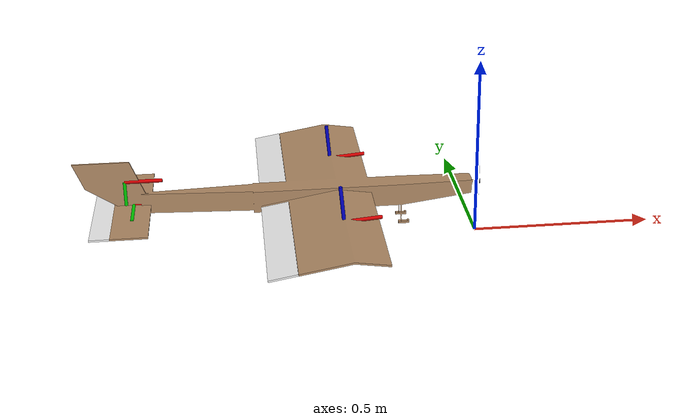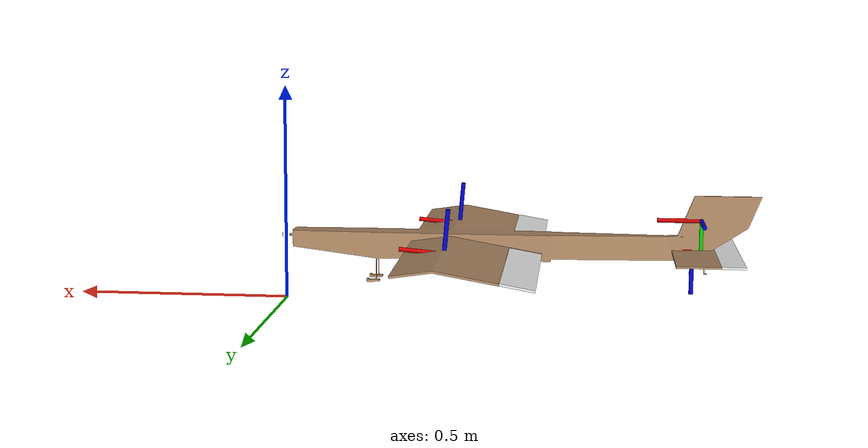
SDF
<?xml version='1.0'?>
<sdf version='1.6'>
  <model name="mini_fixedwing_09">
    <pose>0 0 0.15 0 0 0</pose>
    <link name='fuselage'>
      <inertial>
        <pose>-0.35 0 -0.013 0 0 0</pose>
        <mass>0.225</mass>
        <inertia>
          <ixx>4.3e-3</ixx>
          <iyy>1.51e-2</iyy>
          <izz>1.92e-2</izz>
        </inertia>
      </inertial>
      <collision name='collision'>
        <geometry>
          <mesh>
            <uri>model://mini_fixedwing_09/meshes/stl/fuselage.stl</uri>
          </mesh>
        </geometry>
        <surface>
          <friction>
            <ode>
              <mu>0.2</mu>
              <mu2>0.2</mu2>
            </ode>
          </friction>
          <contact>
            <ode>
              <max_vel>0.1</max_vel>
              <min_depth>0.001</min_depth>
            </ode>
          </contact>
        </surface>
      </collision>
      <visual name='visual'>
        <geometry>
          <mesh>
            <uri>model://mini_fixedwing_09/meshes/stl/fuselage.stl</uri>
          </mesh>
        </geometry>
        <material>
          <ambient>0.678 0.529 0.384 1</ambient>
          <diffuse>0.678 0.529 0.384 1</diffuse>
          <specular>0.678 0.529 0.384 1</specular>
        </material>
      </visual>

      <visual name='cp_vtail'>
        <pose>-0.96 0 0.05 -1.57 0 0</pose>
        <geometry>
          <mesh>
            <scale>0.1 0.1 0.1</scale>
            <uri>model://mini_fixedwing_11/meshes/axes.dae</uri> </mesh>
        </geometry>
      </visual>
      <visual name='cp_htail'>
        <pose>-0.94 0 -0.02 3.14 0 0</pose>
        <geometry>
          <mesh>
            <scale>0.1 0.1 0.1</scale>
            <uri>model://mini_fixedwing_11/meshes/axes.dae</uri> </mesh>
        </geometry>
      </visual>
      <visual name='cp_wing_left'>
        <pose>-0.391 0.21 0 0 -0.087 0</pose>
        <geometry>
          <mesh>
            <scale>0.1 0.1 0.1</scale>
            <uri>model://mini_fixedwing_11/meshes/axes.dae</uri> </mesh>
        </geometry>
      </visual>
      <visual name='cp_wing_right'>
        <pose>-0.391 -0.21 0 0 -0.087 0</pose>
        <geometry>
          <mesh>
            <scale>0.1 0.1 0.1</scale>
            <uri>model://mini_fixedwing_11/meshes/axes.dae</uri> </mesh>
        </geometry>
      </visual>
    </link>

    <link name='elevator'>
      <inertial>
        <mass>0.006</mass>
        <pose>-1.02 0 -0.02</pose>
        <inertia>
          <ixx>1.33e-5</ixx>
          <iyy>1.03e-3</iyy>
          <izz>1.05e-3</izz>
        </inertia>
      </inertial>
      <visual name='visual'>
        <cast_shadows>0</cast_shadows>
        <geometry>
          <mesh>
            <uri>model://mini_fixedwing_09/meshes/stl/elevator.stl</uri>
          </mesh>
        </geometry>
        <material>
          <script>
            <name>Gazebo/White</name>
          </script>
        </material>
      </visual>
    </link>

    <joint name='elevator_joint' type='revolute'>
      <pose>-0.99 0 -0.02</pose>
      <parent>fuselage</parent>
      <child>elevator</child>
      <axis>
        <xyz>0 1 0</xyz>
        <dynamics>
          <damping>0.1</damping>
        </dynamics>
        <limit>
          <lower>-0.5</lower>
          <upper>0.5</upper>
        </limit>
      </axis>
      <physics>
        <ode>
          <implicit_spring_damper>1</implicit_spring_damper>
        </ode>
      </physics>
    </joint>

    <link name='aileron_left'>
      <inertial>
        <mass>0.009</mass>
        <pose>-0.565 0.23 -0.02</pose>
        <inertia>
          <ixx>1.2e-4</ixx>
          <iyy>4e-6</iyy>
          <izz>1.29e-4</izz>
        </inertia>
      </inertial>
      <visual name='visual'>
        <cast_shadows>0</cast_shadows>
        <geometry>
          <mesh>
            <uri>model://mini_fixedwing_09/meshes/stl/aileron_left.stl</uri>
          </mesh>
        </geometry>
        <material>
          <script>
            <name>Gazebo/White</name>
          </script>
        </material>
      </visual>
    </link>

    <joint name='aileron_left_joint' type='revolute'>
      <pose>-0.525 0.23 -0.015</pose>
      <parent>fuselage</parent>
      <child>aileron_left</child>
      <axis>
        <xyz>0 -1 0</xyz>
        <dynamics>
          <damping>0.1</damping>
        </dynamics>
        <limit>
          <lower>-0.5</lower>
          <upper>0.5</upper>
        </limit>
      </axis>
      <physics>
        <ode>
          <implicit_spring_damper>1</implicit_spring_damper>
        </ode>
      </physics>
    </joint>

    <link name='aileron_right'>
      <inertial>
        <mass>0.009</mass>
        <pose>-0.565 -0.23 -0.02</pose>
        <inertia>
          <ixx>3.9e-6</ixx>
          <iyy>3.6e-6</iyy>
          <izz>1.07e-4</izz>
        </inertia>
      </inertial>
      <visual name='visual'>
        <cast_shadows>0</cast_shadows>
        <geometry>
          <mesh>
            <uri>model://mini_fixedwing_09/meshes/stl/aileron_right.stl</uri>
          </mesh>
        </geometry>
        <material>
          <script>
            <name>Gazebo/White</name>
          </script>
        </material>
      </visual>
    </link>

    <joint name='aileron_right_joint' type='revolute'>
      <pose>-0.525 -0.23 -0.015</pose>
      <parent>fuselage</parent>
      <child>aileron_right</child>
      <axis>
        <xyz>0 -1 0</xyz>
        <dynamics>
          <damping>0.1</damping>
        </dynamics>
        <limit>
          <lower>-0.5</lower>
          <upper>0.5</upper>
        </limit>
      </axis>
      <physics>
        <ode>
          <implicit_spring_damper>1</implicit_spring_damper>
        </ode>
      </physics>
    </joint>

    <link name='propeller'>
      <inertial>
        <mass>0.001</mass>
        <inertia>
          <ixx>1e-6</ixx>
          <iyy>1e-6</iyy>
          <izz>1e-6</izz>
        </inertia>
      </inertial>
      <visual name='visual'>
        <cast_shadows>0</cast_shadows>
        <geometry>
          <mesh>
            <uri>model://mini_fixedwing_09/meshes/stl/propeller.stl</uri>
          </mesh>
        </geometry>
        <material>
          <script>
            <name>Gazebo/DarkGrey</name>
          </script>
        </material>
      </visual>
    </link>

    <joint name='propeller_joint' type='revolute'>
      <parent>fuselage</parent>
      <child>propeller</child>
      <axis>
        <xyz>1 0 0</xyz>
      </axis>
    </joint>

    <include>
      <uri>model://gps</uri>
      <pose>0 0 0 0 0 0</pose>
      <name>gps</name>
    </include>
    <joint name='gps_joint' type='fixed'>
      <child>gps::link</child>
      <parent>fuselage</parent>
    </joint>

    <plugin name="vtail" filename="libLiftDragPlugin2.so">
      <pose>-0.96 0 0.05 -1.57 0 0</pose>
      <cL0>0</cL0>
      <cLa>4.053</cLa>
      <cm0>0</cm0>
      <cma>0</cma>
      <cD0>0.03</cD0>
      <kcDcL>0.1</kcDcL>
      <alpha_stall>0.274</alpha_stall>
      <cLa_stall>-3.285</cLa_stall>
      <cma_stall>0</cma_stall>
      <area>0.02</area>
      <air_density>1.2041</air_density>
      <link_name>fuselage</link_name>
    </plugin>

    <plugin name="htail" filename="libLiftDragPlugin2.so">
      <pose>-0.94 0 -0.02 3.14 0 0</pose>
      <cL0>0.66</cL0>
      <cLa>4.053</cLa>
      <cm0>0</cm0>
      <cma>0</cma>
      <cD0>0.03</cD0>
      <kcDcL>0.1</kcDcL>
      <alpha_stall>0.274</alpha_stall>
      <cLa_stall>-3.285</cLa_stall>
      <cma_stall>0</cma_stall>
      <area>0.06</area>
      <air_density>1.2041</air_density>
      <link_name>fuselage</link_name>
      <control_joint_name>elevator_joint</control_joint_name>
      <control_joint_rad_to_cL>1.0</control_joint_rad_to_cL>
      <control_joint_rad_to_cm>-0.25</control_joint_rad_to_cm>
    </plugin>

    <plugin name="wing_left" filename="libLiftDragPlugin2.so">
      <pose>-0.391 0.21 0 0 -0.087 0</pose>
      <cL0>0.66</cL0>
      <cLa>4.053</cLa>
      <cm0>-0.1</cm0>
      <cma>0</cma>
      <cD0>0.03</cD0>
      <kcDcL>0.1</kcDcL>
      <alpha_stall>0.274</alpha_stall>
      <cLa_stall>-3.285</cLa_stall>
      <cma_stall>0</cma_stall>
      <area>0.135</area>
      <air_density>1.2041</air_density>
      <link_name>fuselage</link_name>
      <control_joint_name>aileron_left_joint</control_joint_name>
      <control_joint_rad_to_cL>1.0</control_joint_rad_to_cL>
      <control_joint_rad_to_cm>-0.25</control_joint_rad_to_cm>
      <verbose>0</verbose>
    </plugin>

    <plugin name="wing_right" filename="libLiftDragPlugin2.so">
      <pose>-0.391 -0.21 0 0 -0.087 0</pose>
      <cL0>0.66</cL0>
      <cLa>4.053</cLa>
      <cm0>-0.1</cm0>
      <cma>-1.492</cma>
      <cD0>0.03</cD0>
      <kcDcL>0.1</kcDcL>
      <alpha_stall>0.274</alpha_stall>
      <cLa_stall>-3.285</cLa_stall>
      <cma_stall>0</cma_stall>
      <area>0.135</area>
      <air_density>1.2041</air_density>
      <link_name>fuselage</link_name>
      <control_joint_name>aileron_right_joint</control_joint_name>
      <control_joint_rad_to_cL>1.0</control_joint_rad_to_cL>
      <control_joint_rad_to_cm>-0.25</control_joint_rad_to_cm>
      <verbose>0</verbose>
    </plugin>

    <!--Start PX4 autopilot-->

    <link name='imu_link'>
      <pose>-0.35 0 -0.013 0 0 0</pose>
      <inertial>
        <mass>0.001</mass>
        <inertia>
          <ixx>1e-05</ixx>
          <iyy>1e-05</iyy>
          <izz>1e-05</izz>
        </inertia>
      </inertial>
    </link>

    <joint name='imu_joint' type='revolute'>
      <child>imu_link</child>
      <parent>fuselage</parent>
      <axis>
        <xyz>1 0 0</xyz>
        <limit>
          <lower>0</lower>
          <upper>0</upper>
          <effort>0</effort>
          <velocity>0</velocity>
        </limit>
        <dynamics>
          <spring_reference>0</spring_reference>
          <spring_stiffness>0</spring_stiffness>
        </dynamics>
        <use_parent_model_frame>1</use_parent_model_frame>
      </axis>
    </joint>

    <link name='airspeed_link'>
      <pose>0 0 0 0 0 0</pose>
      <inertial>
        <pose>0 0 0 0 0 0</pose>
        <mass>0.015</mass>
        <inertia>
          <ixx>1e-05</ixx>
          <ixy>0</ixy>
          <ixz>0</ixz>
          <iyy>1e-05</iyy>
          <iyz>0</iyz>
          <izz>1e-05</izz>
        </inertia>
      </inertial>
    </link>
    <joint name='airspeed_joint' type='revolute'>
      <child>airspeed_link</child>
      <parent>fuselage</parent>
      <axis>
        <xyz>1 0 0</xyz>
        <limit>
          <lower>0</lower>
          <upper>0</upper>
          <effort>0</effort>
          <velocity>0</velocity>
        </limit>
        <dynamics>
          <spring_reference>0</spring_reference>
          <spring_stiffness>0</spring_stiffness>
        </dynamics>
        <use_parent_model_frame>1</use_parent_model_frame>
      </axis>
    </joint>

    <plugin name='gazebo_imu_plugin' filename='libgazebo_imu_plugin.so'>
      <robotNamespace></robotNamespace>
      <linkName>imu_link</linkName>
      <imuTopic>/imu</imuTopic>
      <gyroscopeNoiseDensity>0.0003394</gyroscopeNoiseDensity>
      <gyroscopeRandomWalk>3.8785e-05</gyroscopeRandomWalk>
      <gyroscopeBiasCorrelationTime>1000.0</gyroscopeBiasCorrelationTime>
      <gyroscopeTurnOnBiasSigma>0.0087</gyroscopeTurnOnBiasSigma>
      <accelerometerNoiseDensity>0.004</accelerometerNoiseDensity>
      <accelerometerRandomWalk>0.006</accelerometerRandomWalk>
      <accelerometerBiasCorrelationTime>300.0</accelerometerBiasCorrelationTime>
      <accelerometerTurnOnBiasSigma>0.196</accelerometerTurnOnBiasSigma>
    </plugin>

    <plugin name='groundtruth_plugin' filename='libgazebo_groundtruth_plugin.so'>
      <robotNamespace/>
    </plugin>

    <plugin name='magnetometer_plugin' filename='libgazebo_magnetometer_plugin.so'>
      <robotNamespace/>
      <pubRate>100</pubRate>
      <noiseDensity>0.0004</noiseDensity>
      <randomWalk>6.4e-06</randomWalk>
      <biasCorrelationTime>600</biasCorrelationTime>
      <magTopic>/mag</magTopic>
    </plugin>

    <plugin name='barometer_plugin' filename='libgazebo_barometer_plugin.so'>
      <robotNamespace/>
      <pubRate>50</pubRate>
      <baroTopic>/baro</baroTopic>
    </plugin>

    <plugin name='airspeed_plugin' filename='libgazebo_airspeed_plugin.so'>
      <robotNamespace/>
      <linkName>airspeed_link</linkName>
    </plugin>

    <plugin name='motor_plugin' filename='libMotorPlugin.so'>
      <gztopic>/throttle1</gztopic>
      <joint_name>propeller_joint</joint_name>
      <prop_name>propeller</prop_name>
      <diameter>7</diameter>
      <ct>0.1025  -0.0258 0.2714  -0.6997 0.359</ct>
      <cp>0.0537  0.0096  0.2053  -0.4276 0.1702</cp>
      <kV>2300</kV>
      <i0>0.5</i0>
      <iMax>30</iMax>
      <r0>0.2</r0>
      <battV>11.1</battV>
      <capacity>650</capacity>
      <axis_num>0</axis_num>
      <motor_eff>0.7</motor_eff>
      <verbose>1</verbose>
    </plugin>

    <plugin name='mavlink_interface' filename='libgazebo_mavlink_interface.so'>
      <robotNamespace></robotNamespace>
      <imuSubTopic>/imu</imuSubTopic>

      <magSubTopic>/mag</magSubTopic>
      <baroSubTopic>/baro</baroSubTopic>
      <mavlink_addr>INADDR_ANY</mavlink_addr>
      <mavlink_udp_port>14560</mavlink_udp_port>
      <serialEnabled>false</serialEnabled>
      <serialDevice>/dev/ttyACM0</serialDevice>
      <baudRate>921600</baudRate>
      <qgc_addr>INADDR_ANY</qgc_addr>
      <qgc_udp_port>14550</qgc_udp_port>
      <sdk_addr>INADDR_ANY</sdk_addr>
      <sdk_udp_port>14540</sdk_udp_port>
      <hil_mode>false</hil_mode>
      <hil_state_level>false</hil_state_level>
      <enable_lockstep>true</enable_lockstep>
      <use_tcp>true</use_tcp>
      <motorSpeedCommandPubTopic>/gazebo/command/motor_speed</motorSpeedCommandPubTopic>
      <control_channels>
        <channel name="puller">
          <input_index>4</input_index>
          <input_offset>0</input_offset>
          <!--Reducing max thrust to 70%, tends to pitch up at full throttle-->
          <input_scaling>0.7</input_scaling>
          <zero_position_disarmed>0</zero_position_disarmed>
          <zero_position_armed>0</zero_position_armed>
          <joint_control_type>position_gztopic</joint_control_type>
          <gztopic>/throttle1</gztopic>
          <joint_name>propeller_joint</joint_name>
        </channel>
        <channel name="aileron_left">
          <input_index>5</input_index>
          <input_offset>0</input_offset>
          <input_scaling>-0.28</input_scaling>
          <zero_position_disarmed>0</zero_position_disarmed>
          <zero_position_armed>0</zero_position_armed>
          <joint_control_type>position</joint_control_type>
          <joint_name>aileron_left_joint</joint_name>
          <joint_control_pid>
            <p>10</p>
            <i>0</i>
            <d>0</d>
            <iMax>0</iMax>
            <iMin>0</iMin>
            <cmdMax>0.28</cmdMax>
            <cmdMin>-0.28</cmdMin>
          </joint_control_pid>
        </channel>
        <channel name="aileron_right">
          <input_index>6</input_index>
          <input_offset>0</input_offset>
          <input_scaling>-0.28</input_scaling>
          <zero_position_disarmed>0</zero_position_disarmed>
          <zero_position_armed>0</zero_position_armed>
          <joint_control_type>position</joint_control_type>
          <joint_name>aileron_right_joint</joint_name>
          <joint_control_pid>
            <p>10</p>
            <i>0</i>
            <d>0</d>
            <iMax>0</iMax>
            <iMin>0</iMin>
            <cmdMax>0.28</cmdMax>
            <cmdMin>-0.28</cmdMin>
          </joint_control_pid>
        </channel>
        <channel name="elevator">
          <input_index>7</input_index>
          <input_offset>0</input_offset>
          <input_scaling>0.28</input_scaling>
          <zero_position_disarmed>0</zero_position_disarmed>
          <zero_position_armed>0</zero_position_armed>
          <joint_control_type>position</joint_control_type>
          <joint_name>elevator_joint</joint_name>
          <joint_control_pid>
            <p>10</p>
            <i>0</i>
            <d>0</d>
            <iMax>0</iMax>
            <iMin>0</iMin>
            <cmdMax>0.28</cmdMax>
            <cmdMin>-0.28</cmdMin>
          </joint_control_pid>
        </channel>
      </control_channels>

    </plugin>
  </model>

</sdf>

<!-- vim: set et fenc=utf-8 ft=xml ff=unix sts=0 sw=2 ts=2 : -->

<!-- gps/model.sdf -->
<sdf version="1.6">
  <model name="gps">
    <link name="link">
      <pose>0 0 0 0 0 0</pose>
      <inertial>
        <pose>0 0 0 0 0 0</pose>
        <mass>0.015</mass>
        <inertia>
          <ixx>1e-05</ixx>
          <ixy>0</ixy>
          <ixz>0</ixz>
          <iyy>1e-05</iyy>
          <iyz>0</iyz>
          <izz>1e-05</izz>
        </inertia>
      </inertial>
      <visual name="visual">
        <geometry>
          <cylinder>
            <radius>0.01</radius>
            <length>0.002</length>
          </cylinder>
        </geometry>
        <material>
          <script>
            <name>Gazebo/Black</name>
            <uri>file://usr/share/gz/gz-sim8/media/gazebo.material</uri>
          </script>
        </material>
      </visual>
      <sensor name="gps" type="gps">
        <pose>0 0 0 0 0 0</pose>
        <update_rate>5.0</update_rate>
        <always_on>true</always_on>
        <visualize>false</visualize>
        <!-- GpsSensor noise currently not used -->
        <plugin name="gps_plugin" filename="libgazebo_gps_plugin.so">
          <robotNamespace></robotNamespace>
          <gpsNoise>true</gpsNoise>
          <gpsXYRandomWalk>2.0</gpsXYRandomWalk>
          <gpsZRandomWalk>4.0</gpsZRandomWalk>
          <gpsXYNoiseDensity>2.0e-4</gpsXYNoiseDensity>
          <gpsZNoiseDensity>4.0e-4</gpsZNoiseDensity>
          <gpsVXYNoiseDensity>0.2</gpsVXYNoiseDensity>
          <gpsVZNoiseDensity>0.4</gpsVZNoiseDensity>
        </plugin>
      </sensor>
    </link>
  </model>
</sdf>
